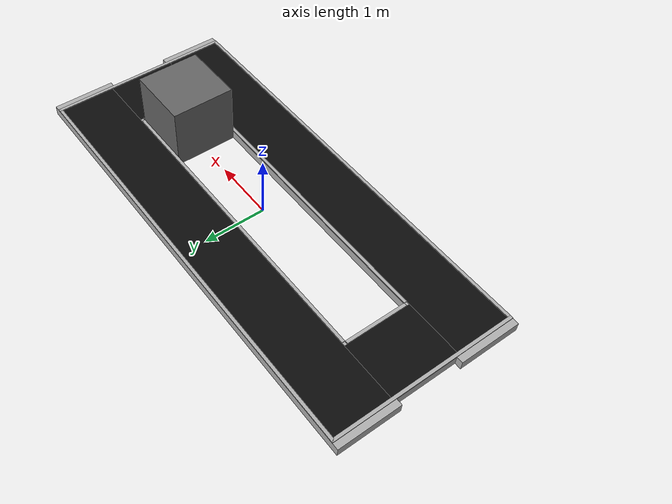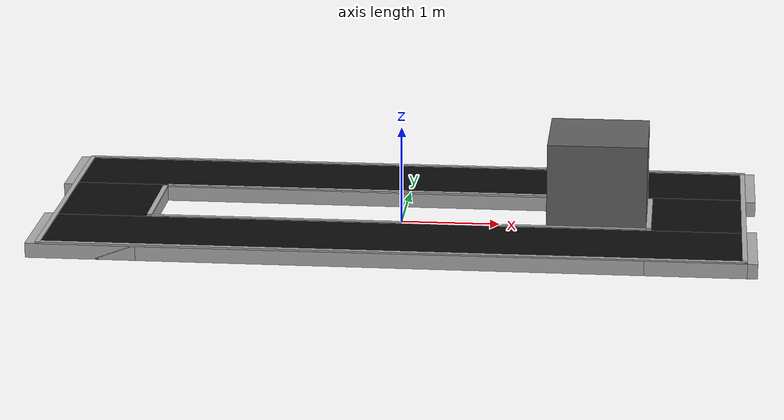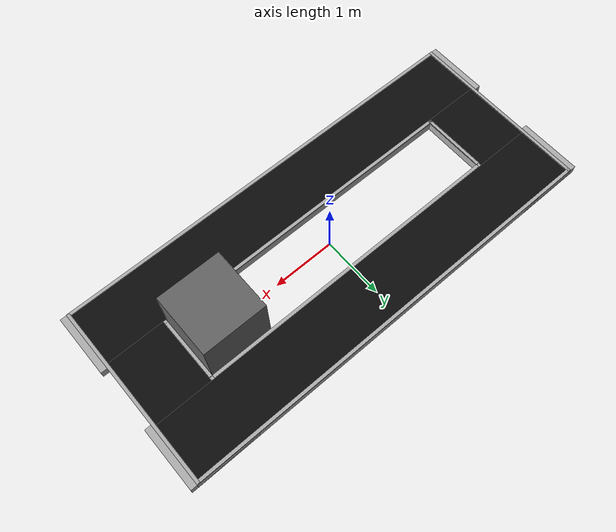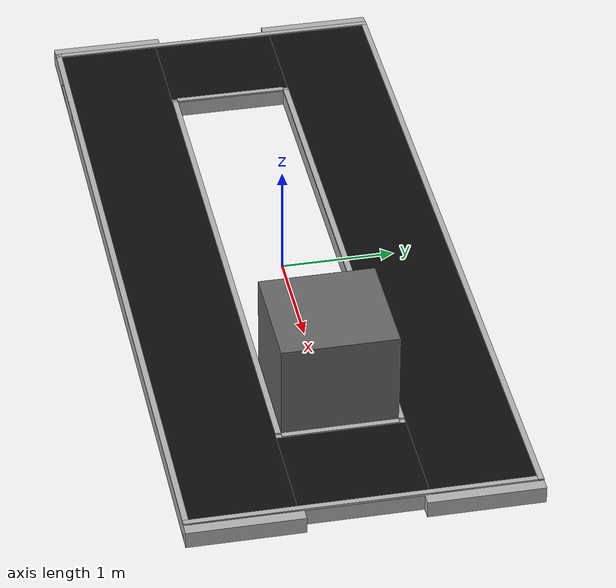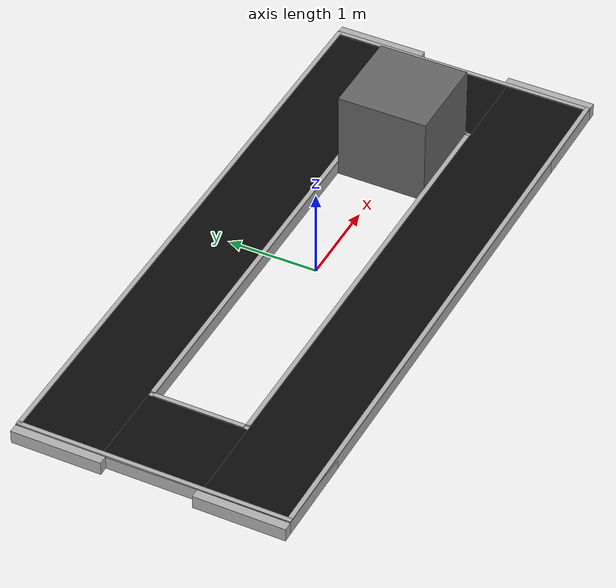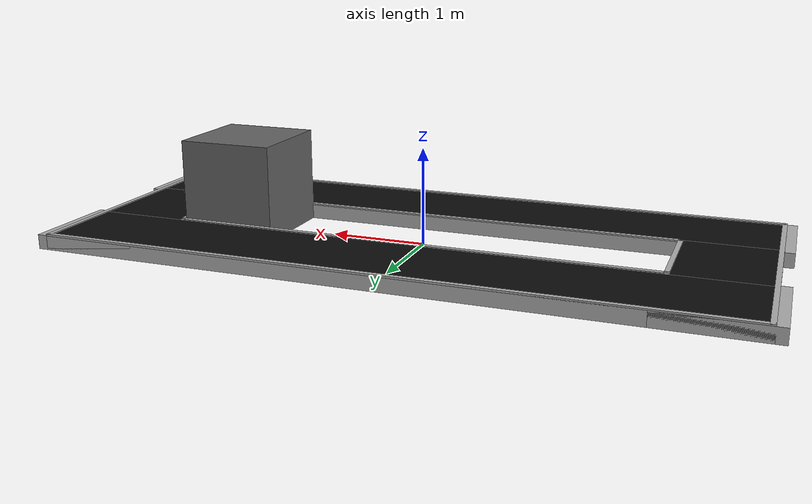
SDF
<?xml version="1.0" ?>
<sdf version="1.6">
  <model name="airport_conveyor">
    <static>true</static>
    <link name="link">

      <visual name="pillar">
        <pose>2.0 0 0.5 0 0 0</pose>
        <geometry><box><size>1.0 1.0 1.0</size></box></geometry>
        <material><ambient>0.3 0.3 0.3 1</ambient><diffuse>0.4 0.4 0.4 1</diffuse></material>
      </visual>
      <collision name="pillar_col">
        <pose>2.0 0 0.5 0 0 0</pose>
        <geometry><box><size>1.0 1.0 1.0</size></box></geometry>
      </collision>

      <visual name="v_east_base">
        <pose>0 1.0 0.075 0 0 0</pose>
        <geometry><box><size>7.2 1.0 0.15</size></box></geometry>
        <material><ambient>0.6 0.6 0.6 1</ambient><diffuse>0.7 0.7 0.7 1</diffuse></material>
      </visual>
      <visual name="v_west_base">
        <pose>0 -1.0 0.075 0 0 0</pose>
        <geometry><box><size>7.2 1.0 0.15</size></box></geometry>
        <material><ambient>0.6 0.6 0.6 1</ambient><diffuse>0.7 0.7 0.7 1</diffuse></material>
      </visual>
      <visual name="v_north_base">
        <pose>3.0 0 0.075 0 0 0</pose>
        <geometry><box><size>1.0 3.0 0.15</size></box></geometry>
        <material><ambient>0.6 0.6 0.6 1</ambient><diffuse>0.7 0.7 0.7 1</diffuse></material>
      </visual>
      <visual name="v_south_base">
        <pose>-3.0 0 0.075 0 0 0</pose>
        <geometry><box><size>1.0 3.0 0.15</size></box></geometry>
        <material><ambient>0.6 0.6 0.6 1</ambient><diffuse>0.7 0.7 0.7 1</diffuse></material>
      </visual>

      <visual name="belt_e"><pose>0 1.0 0.151 0 0 0</pose><geometry><box><size>7.0 0.9 0.01</size></box></geometry>
        <material><ambient>0.05 0.05 0.05 1</ambient><diffuse>0.05 0.05 0.05 1</diffuse></material></visual>
      <visual name="belt_w"><pose>0 -1.0 0.151 0 0 0</pose><geometry><box><size>7.0 0.9 0.01</size></box></geometry>
        <material><ambient>0.05 0.05 0.05 1</ambient><diffuse>0.05 0.05 0.05 1</diffuse></material></visual>
      <visual name="belt_n"><pose>3.0 0 0.151 0 0 0</pose><geometry><box><size>0.9 1.1 0.01</size></box></geometry>
        <material><ambient>0.05 0.05 0.05 1</ambient><diffuse>0.05 0.05 0.05 1</diffuse></material></visual>
      <visual name="belt_s"><pose>-3.0 0 0.151 0 0 0</pose><geometry><box><size>0.9 1.1 0.01</size></box></geometry>
        <material><ambient>0.05 0.05 0.05 1</ambient><diffuse>0.05 0.05 0.05 1</diffuse></material></visual>

      <visual name="b_out_n"><pose>3.475 0 0.155 0 0 0</pose><geometry><box><size>0.05 3.0 0.02</size></box></geometry><material><ambient>0.7 0.7 0.7 1</ambient></material></visual>
      <visual name="b_out_s"><pose>-3.475 0 0.155 0 0 0</pose><geometry><box><size>0.05 3.0 0.02</size></box></geometry><material><ambient>0.7 0.7 0.7 1</ambient></material></visual>
      <visual name="b_out_e"><pose>0 1.475 0.155 0 0 0</pose><geometry><box><size>7.0 0.05 0.02</size></box></geometry><material><ambient>0.7 0.7 0.7 1</ambient></material></visual>
      <visual name="b_out_w"><pose>0 -1.475 0.155 0 0 0</pose><geometry><box><size>7.0 0.05 0.02</size></box></geometry><material><ambient>0.7 0.7 0.7 1</ambient></material></visual>

      <visual name="b_in_n"><pose>2.525 0 0.155 0 0 0</pose><geometry><box><size>0.05 1.0 0.02</size></box></geometry><material><ambient>0.7 0.7 0.7 1</ambient></material></visual>
      <visual name="b_in_s"><pose>-2.525 0 0.155 0 0 0</pose><geometry><box><size>0.05 1.0 0.02</size></box></geometry><material><ambient>0.7 0.7 0.7 1</ambient></material></visual>
      <visual name="b_in_e"><pose>0 0.525 0.155 0 0 0</pose><geometry><box><size>5.0 0.05 0.02</size></box></geometry><material><ambient>0.7 0.7 0.7 1</ambient></material></visual>
      <visual name="b_in_w"><pose>0 -0.525 0.155 0 0 0</pose><geometry><box><size>5.0 0.05 0.02</size></box></geometry><material><ambient>0.7 0.7 0.7 1</ambient></material></visual>

      <collision name="c_e"><pose>0 1.0 0.075 0 0 0</pose><geometry><box><size>7.0 1.0 0.15</size></box></geometry></collision>
      <collision name="c_w"><pose>0 -1.0 0.075 0 0 0</pose><geometry><box><size>7.0 1.0 0.15</size></box></geometry></collision>
      <collision name="c_n"><pose>3.0 0 0.075 0 0 0</pose><geometry><box><size>1.0 1.0 0.15</size></box></geometry></collision>
      <collision name="c_s"><pose>-3.0 0 0.075 0 0 0</pose><geometry><box><size>1.0 1.0 0.15</size></box></geometry></collision>
    </link>
  </model>
</sdf>
